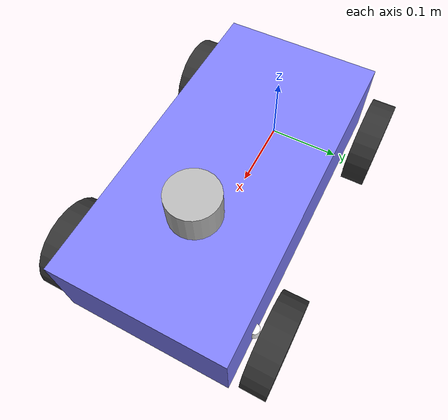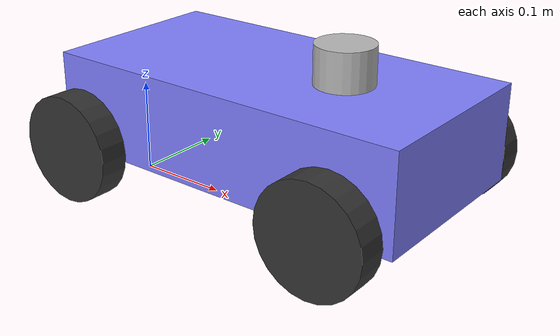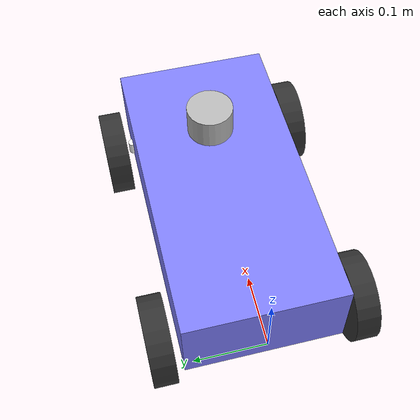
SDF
<sdf version="1.6">
 <world name="racetrack">
  <scene><shadows>1</shadows><grid>0</grid><origin_visual>0</origin_visual></scene>
  <physics type="ode" default="true">
   <gravity>0 0 -9.8</gravity>
   <max_step_size>0.001</max_step_size>
   <real_time_update_rate>1000</real_time_update_rate>
  </physics>
  <physics name="fast_simulation" type="ode" default="false">
   <real_time_update_rate>0</real_time_update_rate>
  </physics>
  <plugin filename="ignition-gazebo-physics-system" name="ignition::gazebo::systems::Physics"/>
  <plugin filename="ignition-gazebo-user-commands-system" name="ignition::gazebo::systems::UserCommands"/>
  <plugin filename="ignition-gazebo-scene-broadcaster-system" name="ignition::gazebo::systems::SceneBroadcaster"/>
  <plugin filename="ignition-gazebo-sensors-system" name="ignition::gazebo::systems::Sensors">
   <render_engine>ogre2</render_engine>
  </plugin>
  <include><uri>https://fuel.gazebosim.org/1.0/OpenRobotics/models/Sun</uri></include>
  <model name="car">
   <pose>0.20 0.015 0.07 0 -0 0</pose>
   <link name="chassis">
    <pose>-0.030113 0 0.030771 0 -0 0</pose>
    <inertial>
     <pose>0 0 -0.05 0 0 0</pose>
     <mass>10.0</mass>
     <inertia>
      <ixx>0.126164</ixx>
      <ixy>0</ixy>
      <ixz>0</ixz>
      <iyy>0.416519</iyy>
      <iyz>0</iyz>
      <izz>0.481014</izz>
     </inertia>
    </inertial>
    <visual name="visual">
     <geometry><box><size>0.4 0.2 0.1</size></box></geometry>
     <material>
      <ambient>0.5 0.5 1.0 1</ambient>
      <diffuse>0.5 0.5 1.0 1</diffuse>
      <specular>0.0 0.0 1.0 1</specular>
     </material>
    </visual>
    <collision name="collision"><geometry><box><size>0.4 0.2 0.1</size></box></geometry></collision>
    <visual name="lidar_visual">
     <pose relative_to="lidar_frame">0 0 -0.03 0 0 0</pose>
     <geometry><cylinder><radius>0.03</radius><length>0.04</length></cylinder></geometry>
    </visual>
    <sensor name="ust10lx" type="gpu_lidar">
     <pose relative_to="lidar_frame">0 0 0 0 0 0</pose>
     <topic>/scan</topic>
     <update_rate>40</update_rate>
     <lidar>
      <scan>
       <horizontal>
        <min_angle>-2.35619449</min_angle>
        <max_angle>2.35619449</max_angle>
        <samples>1080</samples>
        <resolution>1</resolution>
       </horizontal>
       <vertical>
        <samples>1</samples>
        <resolution>1</resolution>
        <min_angle>0</min_angle>
        <max_angle>0</max_angle>
       </vertical>
      </scan>
      <range><min>0.05</min><max>12.0</max><resolution>0.01</resolution></range>
     </lidar>
     <always_on>true</always_on>
     <visualize>true</visualize>
    </sensor>
   </link>
   <link name="front_left_wheel">
    <pose>0.110227 0.125006 -0.004396 -1.5707 0 0</pose>
    <inertial>
     <mass>2</mass>
     <inertia><ixx>0.145833</ixx><ixy>0</ixy><ixz>0</ixz><iyy>0.145833</iyy><iyz>0</iyz><izz>0.125</izz></inertia>
    </inertial>
    <visual name="visual">
     <geometry><cylinder><length>0.03</length><radius>0.056098</radius></cylinder></geometry>
     <material>
      <ambient>0.2 0.2 0.2 1</ambient>
      <diffuse>0.2 0.2 0.2 1</diffuse>
      <specular>0.2 0.2 0.2 1</specular>
     </material>
    </visual>
    <collision name="collision">
     <geometry><cylinder><length>0.03</length><radius>0.056098</radius></cylinder></geometry>
     <surface><friction><ode><mu>1.2</mu><mu2>1.2</mu2><fdir1>0 0 1</fdir1></ode></friction></surface>
    </collision>
   </link>
   <link name="rear_left_wheel">
    <pose>-0.190341 0.125006 -0.004396 -1.5707 0 0</pose>
    <inertial>
     <mass>2</mass>
     <inertia><ixx>0.145833</ixx><ixy>0</ixy><ixz>0</ixz><iyy>0.145833</iyy><iyz>0</iyz><izz>0.125</izz></inertia>
    </inertial>
    <visual name="visual">
     <geometry><cylinder><length>0.03</length><radius>0.056098</radius></cylinder></geometry>
     <material>
      <ambient>0.2 0.2 0.2 1</ambient>
      <diffuse>0.2 0.2 0.2 1</diffuse>
      <specular>0.2 0.2 0.2 1</specular>
     </material>
    </visual>
    <collision name="collision">
     <geometry><cylinder><length>0.03</length><radius>0.056098</radius></cylinder></geometry>
     <surface><friction><ode><mu>1.2</mu><mu2>1.2</mu2><fdir1>0 0 1</fdir1></ode></friction></surface>
    </collision>
   </link>
   <link name="front_right_wheel">
    <pose>0.110227 -0.125006 -0.004396 -1.5707 0 0</pose>
    <inertial>
     <mass>2</mass>
     <inertia><ixx>0.145833</ixx><ixy>0</ixy><ixz>0</ixz><iyy>0.145833</iyy><iyz>0</iyz><izz>0.125</izz></inertia>
    </inertial>
    <visual name="visual">
     <geometry><cylinder><length>0.03</length><radius>0.056098</radius></cylinder></geometry>
     <material>
      <ambient>0.2 0.2 0.2 1</ambient>
      <diffuse>0.2 0.2 0.2 1</diffuse>
      <specular>0.2 0.2 0.2 1</specular>
     </material>
    </visual>
    <collision name="collision">
     <geometry><cylinder><length>0.03</length><radius>0.056098</radius></cylinder></geometry>
     <surface><friction><ode><mu>1.2</mu><mu2>1.2</mu2><fdir1>0 0 1</fdir1></ode></friction></surface>
    </collision>
   </link>
   <link name="rear_right_wheel">
    <pose>-0.190341 -0.125006 -0.004396 -1.5707 0 0</pose>
    <inertial>
     <mass>2</mass>
     <inertia><ixx>0.145833</ixx><ixy>0</ixy><ixz>0</ixz><iyy>0.145833</iyy><iyz>0</iyz><izz>0.125</izz></inertia>
    </inertial>
    <visual name="visual">
     <geometry><cylinder><length>0.03</length><radius>0.056098</radius></cylinder></geometry>
     <material>
      <ambient>0.2 0.2 0.2 1</ambient>
      <diffuse>0.2 0.2 0.2 1</diffuse>
      <specular>0.2 0.2 0.2 1</specular>
     </material>
    </visual>
    <collision name="collision">
     <geometry><cylinder><length>0.03</length><radius>0.056098</radius></cylinder></geometry>
     <surface><friction><ode><mu>1.2</mu><mu2>1.2</mu2><fdir1>0 0 1</fdir1></ode></friction></surface>
    </collision>
   </link>
   <link name="front_left_wheel_steering_link">
    <pose>0.110227 0.1 0.003517 0 0 0</pose>
    <inertial><mass>0.5</mass><inertia><ixx>0.0153</ixx><iyy>0.025</iyy><izz>0.0153</izz></inertia></inertial>
    <visual name="steering_link_visual">
     <geometry><cylinder><length>0.017583</length><radius>0.005983</radius></cylinder></geometry>
     <material><ambient>1 1 1</ambient><diffuse>1 1 1</diffuse></material>
    </visual>
   </link>
   <link name="front_right_wheel_steering_link">
    <pose>0.110227 -0.1 0.003517 0 0 0</pose>
    <inertial><mass>0.5</mass><inertia><ixx>0.0153</ixx><iyy>0.025</iyy><izz>0.0153</izz></inertia></inertial>
    <visual name="steering_link_visual">
     <geometry><cylinder><length>0.017583</length><radius>0.005983</radius></cylinder></geometry>
     <material><ambient>1 1 1</ambient><diffuse>1 1 1</diffuse></material>
    </visual>
   </link>
   <joint name="front_left_wheel_steering_joint" type="revolute">
    <child>front_left_wheel_steering_link</child>
    <parent>chassis</parent>
    <axis>
     <xyz>0 0 1</xyz>
     <limit><lower>-0.7</lower><upper>+0.7</upper><velocity>1.0</velocity><effort>25</effort></limit>
     <use_parent_model_frame>1</use_parent_model_frame>
    </axis>
   </joint>
   <joint name="front_right_wheel_steering_joint" type="revolute">
    <parent>chassis</parent>
    <child>front_right_wheel_steering_link</child>
    <axis>
     <xyz>0 0 1</xyz>
     <limit><lower>-0.7</lower><upper>+0.7</upper><velocity>1.0</velocity><effort>25</effort></limit>
    </axis>
   </joint>
   <joint name="front_left_wheel_joint" type="revolute">
    <parent>front_left_wheel_steering_link</parent>
    <child>front_left_wheel</child>
    <axis>
     <xyz>0 1 0</xyz>
     <use_parent_model_frame>1</use_parent_model_frame>
     <limit><lower>-1.79769e+308</lower><upper>1.79769e+308</upper></limit>
    </axis>
   </joint>
   <joint name="front_right_wheel_joint" type="revolute">
    <parent>front_right_wheel_steering_link</parent>
    <child>front_right_wheel</child>
    <axis>
     <xyz>0 1 0</xyz>
     <use_parent_model_frame>1</use_parent_model_frame>
     <limit><lower>-1.79769e+308</lower><upper>1.79769e+308</upper></limit>
    </axis>
   </joint>
   <joint name="rear_left_wheel_joint" type="revolute">
    <parent>chassis</parent>
    <child>rear_left_wheel</child>
    <axis>
     <xyz>0 1 0</xyz>
     <use_parent_model_frame>1</use_parent_model_frame>
     <limit><lower>-1.79769e+308</lower><upper>1.79769e+308</upper></limit>
    </axis>
   </joint>
   <joint name="rear_right_wheel_joint" type="revolute">
    <parent>chassis</parent>
    <child>rear_right_wheel</child>
    <axis>
     <xyz>0 1 0</xyz>
     <use_parent_model_frame>1</use_parent_model_frame>
     <limit><lower>-1.79769e+308</lower><upper>1.79769e+308</upper></limit>
    </axis>
   </joint>
   <frame name="lidar_frame" attached_to="chassis"><pose>0.08 0 0.10 0 0 0</pose></frame>
   <plugin filename="ignition-gazebo-ackermann-steering-system" name="gz::sim::systems::AckermannSteering">
    <left_joint>front_left_wheel_joint</left_joint>
    <left_joint>rear_left_wheel_joint</left_joint>
    <right_joint>front_right_wheel_joint</right_joint>
    <right_joint>rear_right_wheel_joint</right_joint>
    <left_steering_joint>front_left_wheel_steering_joint</left_steering_joint>
    <right_steering_joint>front_right_wheel_steering_joint</right_steering_joint>
    <kingpin_width>0.2</kingpin_width>
    <steering_limit>0.7</steering_limit>
    <wheel_base>0.300568</wheel_base>
    <wheel_separation>0.250012</wheel_separation>
    <wheel_radius>0.056098</wheel_radius>
    <min_velocity>-1</min_velocity>
    <max_velocity>3.0</max_velocity>
    <min_acceleration>-3.0</min_acceleration>
    <max_acceleration>3.0</max_acceleration>
   </plugin>
  </model>
 </world>
</sdf>
